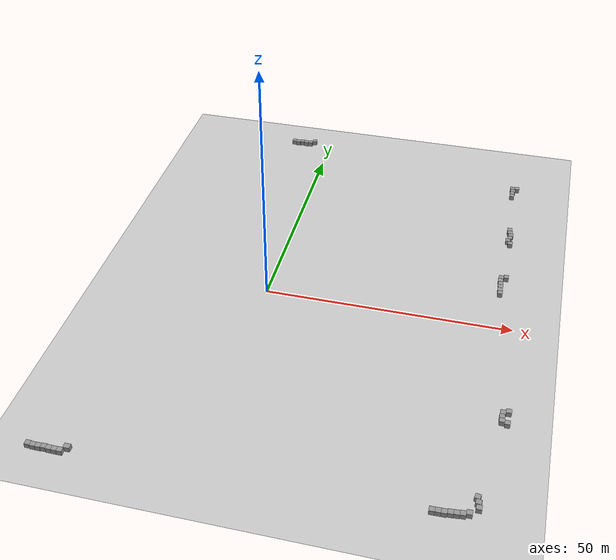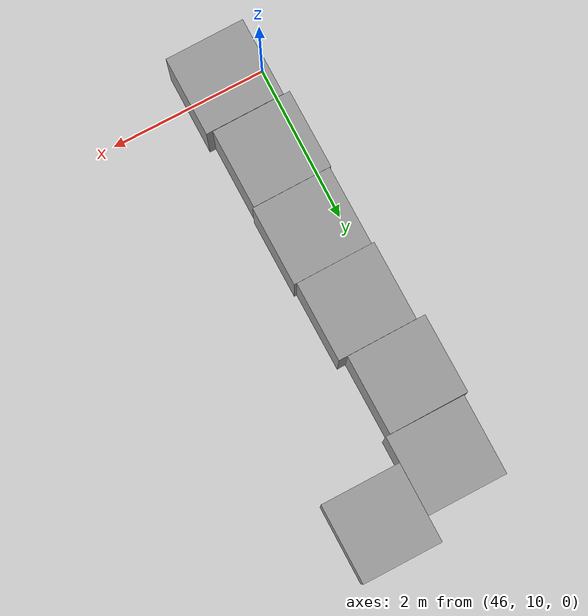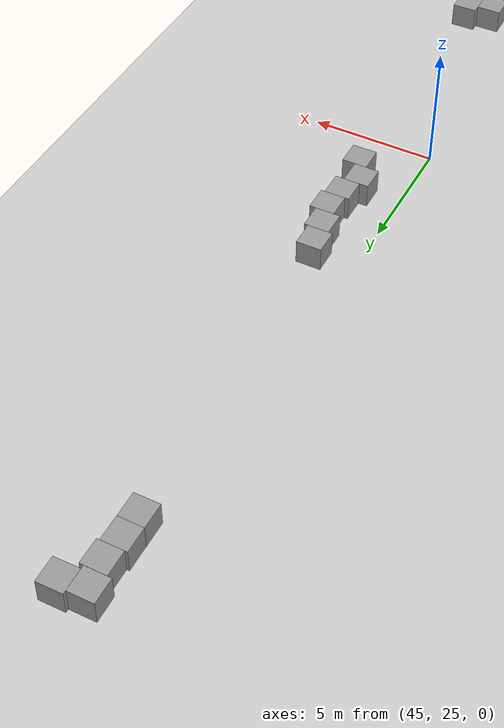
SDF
<sdf version="1.7">
 <world name="default">
  <plugin name="gazebo_occupancy_map" filename="libgazebo_2Dmap_plugin.so">
   <map_resolution>0.2</map_resolution>
   <map_height>1.25</map_height>
   <map_size_x>128</map_size_x>
   <map_size_y>128</map_size_y>
   <init_robot_x>-36.5</init_robot_x>
   <init_robot_y>36.5</init_robot_y>
  </plugin>
  <light name="sun" type="directional">
   <pose>0 0 10 0 -0 0</pose>
   <diffuse>0.8 0.8 0.8 1</diffuse>
   <specular>0.2 0.2 0.2 1</specular>
   <attenuation>
    <range>1000</range>
    <constant>0.9</constant>
    <linear>0.01</linear>
    <quadratic>0.001</quadratic>
   </attenuation>
   <direction>-0.5 0.1 -0.9</direction>
   <spot><inner_angle>0</inner_angle><outer_angle>0</outer_angle><falloff>0</falloff></spot>
  </light>
  <gravity>0 0 -9.8</gravity>
  <magnetic_field>6e-06 2.3e-05 -4.2e-05</magnetic_field>
  <atmosphere type="adiabatic"/>
  <physics type="ode">
   <max_step_size>0.001</max_step_size>
   <real_time_factor>1</real_time_factor>
   <real_time_update_rate>1000</real_time_update_rate>
  </physics>
  <scene><ambient>0.4 0.4 0.4 1</ambient><background>0.7 0.7 0.7 1</background><shadows>1</shadows></scene>
  <spherical_coordinates>
   <surface_model>EARTH_WGS84</surface_model>
   <latitude_deg>0</latitude_deg>
   <longitude_deg>0</longitude_deg>
   <elevation>0</elevation>
   <heading_deg>0</heading_deg>
  </spherical_coordinates>
  <model name="ground_plane">
   <static>1</static>
   <link name="link">
    <collision name="collision">
     <geometry><plane><normal>0 0 1</normal><size>100 100</size></plane></geometry>
     <surface>
      <contact><collide_bitmask>65535</collide_bitmask></contact>
      <friction><ode><mu>100</mu><mu2>50</mu2></ode></friction>
     </surface>
    </collision>
    <visual name="visual">
     <cast_shadows>0</cast_shadows>
     <geometry><plane><normal>0 0 1</normal><size>100 100</size></plane></geometry>
     <material>
      <script><uri>file://media/materials/scripts/gazebo.material</uri><name>Gazebo/Grey</name></script>
     </material>
    </visual>
   </link>
  </model>
  <model name="unit_box">
   <pose>-8.98636 57.4762 0.499995 -1e-05 -0 0.011443</pose>
   <link name="link">
    <inertial>
     <mass>1</mass>
     <inertia>
      <ixx>0.166667</ixx>
      <ixy>0</ixy>
      <ixz>0</ixz>
      <iyy>0.166667</iyy>
      <iyz>0</iyz>
      <izz>0.166667</izz>
     </inertia>
    </inertial>
    <collision name="collision"><geometry><box><size>1 1 1</size></box></geometry></collision>
    <visual name="visual">
     <geometry><box><size>1 1 1</size></box></geometry>
     <material>
      <script><name>Gazebo/Grey</name><uri>file://media/materials/scripts/gazebo.material</uri></script>
     </material>
    </visual>
   </link>
  </model>
  <model name="unit_box_0">
   <pose>-7.98468 57.3449 0.499995 0 1e-05 0.011611</pose>
   <link name="link">
    <inertial>
     <mass>1</mass>
     <inertia>
      <ixx>0.166667</ixx>
      <ixy>0</ixy>
      <ixz>0</ixz>
      <iyy>0.166667</iyy>
      <iyz>0</iyz>
      <izz>0.166667</izz>
     </inertia>
    </inertial>
    <collision name="collision"><geometry><box><size>1 1 1</size></box></geometry></collision>
    <visual name="visual">
     <geometry><box><size>1 1 1</size></box></geometry>
     <material>
      <script><name>Gazebo/Grey</name><uri>file://media/materials/scripts/gazebo.material</uri></script>
     </material>
    </visual>
   </link>
  </model>
  <model name="unit_box_1">
   <pose>-6.98557 57.5348 0.499995 -1e-05 -0 0.015401</pose>
   <link name="link">
    <inertial>
     <mass>1</mass>
     <inertia>
      <ixx>0.166667</ixx>
      <ixy>0</ixy>
      <ixz>0</ixz>
      <iyy>0.166667</iyy>
      <iyz>0</iyz>
      <izz>0.166667</izz>
     </inertia>
    </inertial>
    <collision name="collision"><geometry><box><size>1 1 1</size></box></geometry></collision>
    <visual name="visual">
     <geometry><box><size>1 1 1</size></box></geometry>
     <material>
      <script><name>Gazebo/Grey</name><uri>file://media/materials/scripts/gazebo.material</uri></script>
     </material>
    </visual>
   </link>
  </model>
  <model name="unit_box_2">
   <pose>-5.97813 57.4252 0.499995 -1e-05 -0 0.026365</pose>
   <link name="link">
    <inertial>
     <mass>1</mass>
     <inertia>
      <ixx>0.166667</ixx>
      <ixy>0</ixy>
      <ixz>0</ixz>
      <iyy>0.166667</iyy>
      <iyz>0</iyz>
      <izz>0.166667</izz>
     </inertia>
    </inertial>
    <collision name="collision"><geometry><box><size>1 1 1</size></box></geometry></collision>
    <visual name="visual">
     <geometry><box><size>1 1 1</size></box></geometry>
     <material>
      <script><name>Gazebo/Grey</name><uri>file://media/materials/scripts/gazebo.material</uri></script>
     </material>
    </visual>
   </link>
  </model>
  <model name="unit_box_3">
   <pose>-4.96443 57.5025 0.499995 0 -1e-05 0.056159</pose>
   <link name="link">
    <inertial>
     <mass>1</mass>
     <inertia>
      <ixx>0.166667</ixx>
      <ixy>0</ixy>
      <ixz>0</ixz>
      <iyy>0.166667</iyy>
      <iyz>0</iyz>
      <izz>0.166667</izz>
     </inertia>
    </inertial>
    <collision name="collision"><geometry><box><size>1 1 1</size></box></geometry></collision>
    <visual name="visual">
     <geometry><box><size>1 1 1</size></box></geometry>
     <material>
      <script><name>Gazebo/Grey</name><uri>file://media/materials/scripts/gazebo.material</uri></script>
     </material>
    </visual>
   </link>
  </model>
  <model name="unit_box_4">
   <pose>-4.01279 58.2979 0.5 0 -0 0.078397</pose>
   <link name="link">
    <inertial>
     <mass>1</mass>
     <inertia>
      <ixx>0.166667</ixx>
      <ixy>0</ixy>
      <ixz>0</ixz>
      <iyy>0.166667</iyy>
      <iyz>0</iyz>
      <izz>0.166667</izz>
     </inertia>
    </inertial>
    <collision name="collision"><geometry><box><size>1 1 1</size></box></geometry></collision>
    <visual name="visual">
     <geometry><box><size>1 1 1</size></box></geometry>
     <material>
      <script><name>Gazebo/Grey</name><uri>file://media/materials/scripts/gazebo.material</uri></script>
     </material>
    </visual>
   </link>
  </model>
  <model name="unit_box_5">
   <pose>-22.6082 -49.6496 0.499995 1e-05 0 0.007625</pose>
   <link name="link">
    <inertial>
     <mass>1</mass>
     <inertia>
      <ixx>0.166667</ixx>
      <ixy>0</ixy>
      <ixz>0</ixz>
      <iyy>0.166667</iyy>
      <iyz>0</iyz>
      <izz>0.166667</izz>
     </inertia>
    </inertial>
    <collision name="collision"><geometry><box><size>1 1 1</size></box></geometry></collision>
    <visual name="visual">
     <geometry><box><size>1 1 1</size></box></geometry>
     <material>
      <script><name>Gazebo/Grey</name><uri>file://media/materials/scripts/gazebo.material</uri></script>
     </material>
    </visual>
   </link>
  </model>
  <model name="unit_box_6">
   <pose>-23.6083 -49.648 0.499995 -0 -1e-05 0.007673</pose>
   <link name="link">
    <inertial>
     <mass>1</mass>
     <inertia>
      <ixx>0.166667</ixx>
      <ixy>0</ixy>
      <ixz>0</ixz>
      <iyy>0.166667</iyy>
      <iyz>0</iyz>
      <izz>0.166667</izz>
     </inertia>
    </inertial>
    <collision name="collision"><geometry><box><size>1 1 1</size></box></geometry></collision>
    <visual name="visual">
     <geometry><box><size>1 1 1</size></box></geometry>
     <material>
      <script><name>Gazebo/Grey</name><uri>file://media/materials/scripts/gazebo.material</uri></script>
     </material>
    </visual>
   </link>
  </model>
  <model name="unit_box_7">
   <pose>-25.6091 -49.5506 0.5 0 -0 0.007649</pose>
   <link name="link">
    <inertial>
     <mass>1</mass>
     <inertia>
      <ixx>0.166667</ixx>
      <ixy>0</ixy>
      <ixz>0</ixz>
      <iyy>0.166667</iyy>
      <iyz>0</iyz>
      <izz>0.166667</izz>
     </inertia>
    </inertial>
    <collision name="collision"><geometry><box><size>1 1 1</size></box></geometry></collision>
    <visual name="visual">
     <geometry><box><size>1 1 1</size></box></geometry>
     <material>
      <script><name>Gazebo/Grey</name><uri>file://media/materials/scripts/gazebo.material</uri></script>
     </material>
    </visual>
   </link>
  </model>
  <model name="unit_box_8">
   <pose>-24.6084 -49.6379 0.5 -1.5708 0 0.00768</pose>
   <link name="link">
    <inertial>
     <mass>1</mass>
     <inertia>
      <ixx>0.166667</ixx>
      <ixy>0</ixy>
      <ixz>0</ixz>
      <iyy>0.166667</iyy>
      <iyz>0</iyz>
      <izz>0.166667</izz>
     </inertia>
    </inertial>
    <collision name="collision"><geometry><box><size>1 1 1</size></box></geometry></collision>
    <visual name="visual">
     <geometry><box><size>1 1 1</size></box></geometry>
     <material>
      <script><name>Gazebo/Grey</name><uri>file://media/materials/scripts/gazebo.material</uri></script>
     </material>
    </visual>
   </link>
  </model>
  <model name="unit_box_9">
   <pose>-26.6087 -49.6139 0.5 0 -0 0.007648</pose>
   <link name="link">
    <inertial>
     <mass>1</mass>
     <inertia>
      <ixx>0.166667</ixx>
      <ixy>0</ixy>
      <ixz>0</ixz>
      <iyy>0.166667</iyy>
      <iyz>0</iyz>
      <izz>0.166667</izz>
     </inertia>
    </inertial>
    <collision name="collision"><geometry><box><size>1 1 1</size></box></geometry></collision>
    <visual name="visual">
     <geometry><box><size>1 1 1</size></box></geometry>
     <material>
      <script><name>Gazebo/Grey</name><uri>file://media/materials/scripts/gazebo.material</uri></script>
     </material>
    </visual>
   </link>
  </model>
  <model name="unit_box_10">
   <pose>-27.6089 -49.6077 0.499995 1e-05 -0 0.007649</pose>
   <link name="link">
    <inertial>
     <mass>1</mass>
     <inertia>
      <ixx>0.166667</ixx>
      <ixy>0</ixy>
      <ixz>0</ixz>
      <iyy>0.166667</iyy>
      <iyz>0</iyz>
      <izz>0.166667</izz>
     </inertia>
    </inertial>
    <collision name="collision"><geometry><box><size>1 1 1</size></box></geometry></collision>
    <visual name="visual">
     <geometry><box><size>1 1 1</size></box></geometry>
     <material>
      <script><name>Gazebo/Grey</name><uri>file://media/materials/scripts/gazebo.material</uri></script>
     </material>
    </visual>
   </link>
  </model>
  <model name="unit_box_13">
   <pose>46.5951 32.2481 0.499995 0 -1e-05 0.010753</pose>
   <link name="link">
    <inertial>
     <mass>1</mass>
     <inertia>
      <ixx>0.166667</ixx>
      <ixy>0</ixy>
      <ixz>0</ixz>
      <iyy>0.166667</iyy>
      <iyz>0</iyz>
      <izz>0.166667</izz>
     </inertia>
    </inertial>
    <collision name="collision"><geometry><box><size>1 1 1</size></box></geometry></collision>
    <visual name="visual">
     <geometry><box><size>1 1 1</size></box></geometry>
     <material>
      <script><name>Gazebo/Grey</name><uri>file://media/materials/scripts/gazebo.material</uri></script>
     </material>
    </visual>
   </link>
  </model>
  <model name="unit_box_14">
   <pose>46.7648 31.2498 0.499995 -0 -1e-05 0.010744</pose>
   <link name="link">
    <inertial>
     <mass>1</mass>
     <inertia>
      <ixx>0.166667</ixx>
      <ixy>0</ixy>
      <ixz>0</ixz>
      <iyy>0.166667</iyy>
      <iyz>0</iyz>
      <izz>0.166667</izz>
     </inertia>
    </inertial>
    <collision name="collision"><geometry><box><size>1 1 1</size></box></geometry></collision>
    <visual name="visual">
     <geometry><box><size>1 1 1</size></box></geometry>
     <material>
      <script><name>Gazebo/Grey</name><uri>file://media/materials/scripts/gazebo.material</uri></script>
     </material>
    </visual>
   </link>
  </model>
  <model name="unit_box_15">
   <pose>47.0333 30.2523 0.499995 0 1e-05 0.010105</pose>
   <link name="link">
    <inertial>
     <mass>1</mass>
     <inertia>
      <ixx>0.166667</ixx>
      <ixy>0</ixy>
      <ixz>0</ixz>
      <iyy>0.166667</iyy>
      <iyz>0</iyz>
      <izz>0.166667</izz>
     </inertia>
    </inertial>
    <collision name="collision"><geometry><box><size>1 1 1</size></box></geometry></collision>
    <visual name="visual">
     <geometry><box><size>1 1 1</size></box></geometry>
     <material>
      <script><name>Gazebo/Grey</name><uri>file://media/materials/scripts/gazebo.material</uri></script>
     </material>
    </visual>
   </link>
  </model>
  <model name="unit_box_16">
   <pose>46.8896 29.2496 0.499995 0 1e-05 0.00669</pose>
   <link name="link">
    <inertial>
     <mass>1</mass>
     <inertia>
      <ixx>0.166667</ixx>
      <ixy>0</ixy>
      <ixz>0</ixz>
      <iyy>0.166667</iyy>
      <iyz>0</iyz>
      <izz>0.166667</izz>
     </inertia>
    </inertial>
    <collision name="collision"><geometry><box><size>1 1 1</size></box></geometry></collision>
    <visual name="visual">
     <geometry><box><size>1 1 1</size></box></geometry>
     <material>
      <script><name>Gazebo/Grey</name><uri>file://media/materials/scripts/gazebo.material</uri></script>
     </material>
    </visual>
   </link>
  </model>
  <model name="unit_box_17">
   <pose>46.5508 28.2473 0.499995 0 -1e-05 0.006689</pose>
   <link name="link">
    <inertial>
     <mass>1</mass>
     <inertia>
      <ixx>0.166667</ixx>
      <ixy>0</ixy>
      <ixz>0</ixz>
      <iyy>0.166667</iyy>
      <iyz>0</iyz>
      <izz>0.166667</izz>
     </inertia>
    </inertial>
    <collision name="collision"><geometry><box><size>1 1 1</size></box></geometry></collision>
    <visual name="visual">
     <geometry><box><size>1 1 1</size></box></geometry>
     <material>
      <script><name>Gazebo/Grey</name><uri>file://media/materials/scripts/gazebo.material</uri></script>
     </material>
    </visual>
   </link>
  </model>
  <model name="unit_box_18">
   <pose>47.0904 27.251 0.499995 -1e-05 -0 0.010691</pose>
   <link name="link">
    <inertial>
     <mass>1</mass>
     <inertia>
      <ixx>0.166667</ixx>
      <ixy>0</ixy>
      <ixz>0</ixz>
      <iyy>0.166667</iyy>
      <iyz>0</iyz>
      <izz>0.166667</izz>
     </inertia>
    </inertial>
    <collision name="collision"><geometry><box><size>1 1 1</size></box></geometry></collision>
    <visual name="visual">
     <geometry><box><size>1 1 1</size></box></geometry>
     <material>
      <script><name>Gazebo/Grey</name><uri>file://media/materials/scripts/gazebo.material</uri></script>
     </material>
    </visual>
   </link>
  </model>
  <model name="unit_box_19">
   <pose>45.943 45.7706 0.499995 0 -1e-05 0.006135</pose>
   <link name="link">
    <inertial>
     <mass>1</mass>
     <inertia>
      <ixx>0.166667</ixx>
      <ixy>0</ixy>
      <ixz>0</ixz>
      <iyy>0.166667</iyy>
      <iyz>0</iyz>
      <izz>0.166667</izz>
     </inertia>
    </inertial>
    <collision name="collision"><geometry><box><size>1 1 1</size></box></geometry></collision>
    <visual name="visual">
     <geometry><box><size>1 1 1</size></box></geometry>
     <material>
      <script><name>Gazebo/Grey</name><uri>file://media/materials/scripts/gazebo.material</uri></script>
     </material>
    </visual>
   </link>
  </model>
  <model name="unit_box_20">
   <pose>45.9403 46.7707 0.499995 -1e-05 -0 0.006289</pose>
   <link name="link">
    <inertial>
     <mass>1</mass>
     <inertia>
      <ixx>0.166667</ixx>
      <ixy>0</ixy>
      <ixz>0</ixz>
      <iyy>0.166667</iyy>
      <iyz>0</iyz>
      <izz>0.166667</izz>
     </inertia>
    </inertial>
    <collision name="collision"><geometry><box><size>1 1 1</size></box></geometry></collision>
    <visual name="visual">
     <geometry><box><size>1 1 1</size></box></geometry>
     <material>
      <script><name>Gazebo/Grey</name><uri>file://media/materials/scripts/gazebo.material</uri></script>
     </material>
    </visual>
   </link>
  </model>
  <model name="unit_box_21">
   <pose>46.0353 47.7715 0.499995 -1e-05 -0 0.006637</pose>
   <link name="link">
    <inertial>
     <mass>1</mass>
     <inertia>
      <ixx>0.166667</ixx>
      <ixy>0</ixy>
      <ixz>0</ixz>
      <iyy>0.166667</iyy>
      <iyz>0</iyz>
      <izz>0.166667</izz>
     </inertia>
    </inertial>
    <collision name="collision"><geometry><box><size>1 1 1</size></box></geometry></collision>
    <visual name="visual">
     <geometry><box><size>1 1 1</size></box></geometry>
     <material>
      <script><name>Gazebo/Grey</name><uri>file://media/materials/scripts/gazebo.material</uri></script>
     </material>
    </visual>
   </link>
  </model>
  <model name="unit_box_22">
   <pose>45.8528 48.7723 0.499995 -0 -1e-05 0.012651</pose>
   <link name="link">
    <inertial>
     <mass>1</mass>
     <inertia>
      <ixx>0.166667</ixx>
      <ixy>0</ixy>
      <ixz>0</ixz>
      <iyy>0.166667</iyy>
      <iyz>0</iyz>
      <izz>0.166667</izz>
     </inertia>
    </inertial>
    <collision name="collision"><geometry><box><size>1 1 1</size></box></geometry></collision>
    <visual name="visual">
     <geometry><box><size>1 1 1</size></box></geometry>
     <material>
      <script><name>Gazebo/Grey</name><uri>file://media/materials/scripts/gazebo.material</uri></script>
     </material>
    </visual>
   </link>
  </model>
  <model name="unit_box_23">
   <pose>46.8538 48.9207 0.499995 0 -1e-05 0.02025</pose>
   <link name="link">
    <inertial>
     <mass>1</mass>
     <inertia>
      <ixx>0.166667</ixx>
      <ixy>0</ixy>
      <ixz>0</ixz>
      <iyy>0.166667</iyy>
      <iyz>0</iyz>
      <izz>0.166667</izz>
     </inertia>
    </inertial>
    <collision name="collision"><geometry><box><size>1 1 1</size></box></geometry></collision>
    <visual name="visual">
     <geometry><box><size>1 1 1</size></box></geometry>
     <material>
      <script><name>Gazebo/Grey</name><uri>file://media/materials/scripts/gazebo.material</uri></script>
     </material>
    </visual>
   </link>
  </model>
  <model name="unit_box_24">
   <pose>46.511 10.0828 0.499995 0 1e-05 0.010053</pose>
   <link name="link">
    <inertial>
     <mass>1</mass>
     <inertia>
      <ixx>0.166667</ixx>
      <ixy>0</ixy>
      <ixz>0</ixz>
      <iyy>0.166667</iyy>
      <iyz>0</iyz>
      <izz>0.166667</izz>
     </inertia>
    </inertial>
    <collision name="collision"><geometry><box><size>1 1 1</size></box></geometry></collision>
    <visual name="visual">
     <geometry><box><size>1 1 1</size></box></geometry>
     <material>
      <script><name>Gazebo/Grey</name><uri>file://media/materials/scripts/gazebo.material</uri></script>
     </material>
    </visual>
   </link>
  </model>
  <model name="unit_box_25">
   <pose>46.421 11.0857 0.499995 -0 -1e-05 0.011551</pose>
   <link name="link">
    <inertial>
     <mass>1</mass>
     <inertia>
      <ixx>0.166667</ixx>
      <ixy>0</ixy>
      <ixz>0</ixz>
      <iyy>0.166667</iyy>
      <iyz>0</iyz>
      <izz>0.166667</izz>
     </inertia>
    </inertial>
    <collision name="collision"><geometry><box><size>1 1 1</size></box></geometry></collision>
    <visual name="visual">
     <geometry><box><size>1 1 1</size></box></geometry>
     <material>
      <script><name>Gazebo/Grey</name><uri>file://media/materials/scripts/gazebo.material</uri></script>
     </material>
    </visual>
   </link>
  </model>
  <model name="unit_box_26">
   <pose>46.427 12.0874 0.499995 1e-05 0 0.012653</pose>
   <link name="link">
    <inertial>
     <mass>1</mass>
     <inertia>
      <ixx>0.166667</ixx>
      <ixy>0</ixy>
      <ixz>0</ixz>
      <iyy>0.166667</iyy>
      <iyz>0</iyz>
      <izz>0.166667</izz>
     </inertia>
    </inertial>
    <collision name="collision"><geometry><box><size>1 1 1</size></box></geometry></collision>
    <visual name="visual">
     <geometry><box><size>1 1 1</size></box></geometry>
     <material>
      <script><name>Gazebo/Grey</name><uri>file://media/materials/scripts/gazebo.material</uri></script>
     </material>
    </visual>
   </link>
  </model>
  <model name="unit_box_27">
   <pose>46.3811 13.0875 0.499995 -0 1e-05 0.013697</pose>
   <link name="link">
    <inertial>
     <mass>1</mass>
     <inertia>
      <ixx>0.166667</ixx>
      <ixy>0</ixy>
      <ixz>0</ixz>
      <iyy>0.166667</iyy>
      <iyz>0</iyz>
      <izz>0.166667</izz>
     </inertia>
    </inertial>
    <collision name="collision"><geometry><box><size>1 1 1</size></box></geometry></collision>
    <visual name="visual">
     <geometry><box><size>1 1 1</size></box></geometry>
     <material>
      <script><name>Gazebo/Grey</name><uri>file://media/materials/scripts/gazebo.material</uri></script>
     </material>
    </visual>
   </link>
  </model>
  <model name="unit_box_28">
   <pose>46.2579 14.0872 0.499995 -1e-05 -0 0.014336</pose>
   <link name="link">
    <inertial>
     <mass>1</mass>
     <inertia>
      <ixx>0.166667</ixx>
      <ixy>0</ixy>
      <ixz>0</ixz>
      <iyy>0.166667</iyy>
      <iyz>0</iyz>
      <izz>0.166667</izz>
     </inertia>
    </inertial>
    <collision name="collision"><geometry><box><size>1 1 1</size></box></geometry></collision>
    <visual name="visual">
     <geometry><box><size>1 1 1</size></box></geometry>
     <material>
      <script><name>Gazebo/Grey</name><uri>file://media/materials/scripts/gazebo.material</uri></script>
     </material>
    </visual>
   </link>
  </model>
  <model name="unit_box_29">
   <pose>46.3018 15.0921 0.499995 -1e-05 -0 0.00751</pose>
   <link name="link">
    <inertial>
     <mass>1</mass>
     <inertia>
      <ixx>0.166667</ixx>
      <ixy>0</ixy>
      <ixz>0</ixz>
      <iyy>0.166667</iyy>
      <iyz>0</iyz>
      <izz>0.166667</izz>
     </inertia>
    </inertial>
    <collision name="collision"><geometry><box><size>1 1 1</size></box></geometry></collision>
    <visual name="visual">
     <geometry><box><size>1 1 1</size></box></geometry>
     <material>
      <script><name>Gazebo/Grey</name><uri>file://media/materials/scripts/gazebo.material</uri></script>
     </material>
    </visual>
   </link>
  </model>
  <model name="unit_box_30">
   <pose>47.2994 15.4273 0.499995 -1e-05 -0 0.007507</pose>
   <link name="link">
    <inertial>
     <mass>1</mass>
     <inertia>
      <ixx>0.166667</ixx>
      <ixy>0</ixy>
      <ixz>0</ixz>
      <iyy>0.166667</iyy>
      <iyz>0</iyz>
      <izz>0.166667</izz>
     </inertia>
    </inertial>
    <collision name="collision"><geometry><box><size>1 1 1</size></box></geometry></collision>
    <visual name="visual">
     <geometry><box><size>1 1 1</size></box></geometry>
     <material>
      <script><name>Gazebo/Grey</name><uri>file://media/materials/scripts/gazebo.material</uri></script>
     </material>
    </visual>
   </link>
  </model>
  <model name="unit_box_31">
   <pose>46.8394 -45.9795 0.499995 0 1e-05 0.032244</pose>
   <link name="link">
    <inertial>
     <mass>1</mass>
     <inertia>
      <ixx>0.166667</ixx>
      <ixy>0</ixy>
      <ixz>0</ixz>
      <iyy>0.166667</iyy>
      <iyz>0</iyz>
      <izz>0.166667</izz>
     </inertia>
    </inertial>
    <collision name="collision"><geometry><box><size>1 1 1</size></box></geometry></collision>
    <visual name="visual">
     <geometry><box><size>1 1 1</size></box></geometry>
     <material>
      <script><name>Gazebo/Grey</name><uri>file://media/materials/scripts/gazebo.material</uri></script>
     </material>
    </visual>
   </link>
  </model>
  <model name="unit_box_32">
   <pose>45.851 -46.3579 0.499995 0 -1e-05 0.032297</pose>
   <link name="link">
    <inertial>
     <mass>1</mass>
     <inertia>
      <ixx>0.166667</ixx>
      <ixy>0</ixy>
      <ixz>0</ixz>
      <iyy>0.166667</iyy>
      <iyz>0</iyz>
      <izz>0.166667</izz>
     </inertia>
    </inertial>
    <collision name="collision"><geometry><box><size>1 1 1</size></box></geometry></collision>
    <visual name="visual">
     <geometry><box><size>1 1 1</size></box></geometry>
     <material>
      <script><name>Gazebo/Grey</name><uri>file://media/materials/scripts/gazebo.material</uri></script>
     </material>
    </visual>
   </link>
  </model>
  <model name="unit_box_33">
   <pose>44.8539 -46.4684 0.499995 0 1e-05 0.032145</pose>
   <link name="link">
    <inertial>
     <mass>1</mass>
     <inertia>
      <ixx>0.166667</ixx>
      <ixy>0</ixy>
      <ixz>0</ixz>
      <iyy>0.166667</iyy>
      <iyz>0</iyz>
      <izz>0.166667</izz>
     </inertia>
    </inertial>
    <collision name="collision"><geometry><box><size>1 1 1</size></box></geometry></collision>
    <visual name="visual">
     <geometry><box><size>1 1 1</size></box></geometry>
     <material>
      <script><name>Gazebo/Grey</name><uri>file://media/materials/scripts/gazebo.material</uri></script>
     </material>
    </visual>
   </link>
  </model>
  <model name="unit_box_34">
   <pose>43.8563 -46.5607 0.499995 -1e-05 -0 0.032085</pose>
   <link name="link">
    <inertial>
     <mass>1</mass>
     <inertia>
      <ixx>0.166667</ixx>
      <ixy>0</ixy>
      <ixz>0</ixz>
      <iyy>0.166667</iyy>
      <iyz>0</iyz>
      <izz>0.166667</izz>
     </inertia>
    </inertial>
    <collision name="collision"><geometry><box><size>1 1 1</size></box></geometry></collision>
    <visual name="visual">
     <geometry><box><size>1 1 1</size></box></geometry>
     <material>
      <script><name>Gazebo/Grey</name><uri>file://media/materials/scripts/gazebo.material</uri></script>
     </material>
    </visual>
   </link>
  </model>
  <model name="unit_box_35">
   <pose>42.8599 -46.7184 0.499995 -0 -1e-05 0.03034</pose>
   <link name="link">
    <inertial>
     <mass>1</mass>
     <inertia>
      <ixx>0.166667</ixx>
      <ixy>0</ixy>
      <ixz>0</ixz>
      <iyy>0.166667</iyy>
      <iyz>0</iyz>
      <izz>0.166667</izz>
     </inertia>
    </inertial>
    <collision name="collision"><geometry><box><size>1 1 1</size></box></geometry></collision>
    <visual name="visual">
     <geometry><box><size>1 1 1</size></box></geometry>
     <material>
      <script><name>Gazebo/Grey</name><uri>file://media/materials/scripts/gazebo.material</uri></script>
     </material>
    </visual>
   </link>
  </model>
  <model name="unit_box_36">
   <pose>41.8595 -46.7334 0.499995 0 -1e-05 0.029624</pose>
   <link name="link">
    <inertial>
     <mass>1</mass>
     <inertia>
      <ixx>0.166667</ixx>
      <ixy>0</ixy>
      <ixz>0</ixz>
      <iyy>0.166667</iyy>
      <iyz>0</iyz>
      <izz>0.166667</izz>
     </inertia>
    </inertial>
    <collision name="collision"><geometry><box><size>1 1 1</size></box></geometry></collision>
    <visual name="visual">
     <geometry><box><size>1 1 1</size></box></geometry>
     <material>
      <script><name>Gazebo/Grey</name><uri>file://media/materials/scripts/gazebo.material</uri></script>
     </material>
    </visual>
   </link>
  </model>
  <model name="unit_box_37">
   <pose>40.8598 -46.7595 0.499995 1e-05 -0 0.029637</pose>
   <link name="link">
    <inertial>
     <mass>1</mass>
     <inertia>
      <ixx>0.166667</ixx>
      <ixy>0</ixy>
      <ixz>0</ixz>
      <iyy>0.166667</iyy>
      <iyz>0</iyz>
      <izz>0.166667</izz>
     </inertia>
    </inertial>
    <collision name="collision"><geometry><box><size>1 1 1</size></box></geometry></collision>
    <visual name="visual">
     <geometry><box><size>1 1 1</size></box></geometry>
     <material>
      <script><name>Gazebo/Grey</name><uri>file://media/materials/scripts/gazebo.material</uri></script>
     </material>
    </visual>
   </link>
  </model>
  <model name="unit_box_38">
   <pose>50.0794 -22.8502 0.499995 0 -1e-05 0.015118</pose>
   <link name="link">
    <inertial>
     <mass>1</mass>
     <inertia>
      <ixx>0.166667</ixx>
      <ixy>0</ixy>
      <ixz>0</ixz>
      <iyy>0.166667</iyy>
      <iyz>0</iyz>
      <izz>0.166667</izz>
     </inertia>
    </inertial>
    <collision name="collision"><geometry><box><size>1 1 1</size></box></geometry></collision>
    <visual name="visual">
     <geometry><box><size>1 1 1</size></box></geometry>
     <material>
      <script><name>Gazebo/Grey</name><uri>file://media/materials/scripts/gazebo.material</uri></script>
     </material>
    </visual>
   </link>
  </model>
  <model name="unit_box_39">
   <pose>50.0202 -23.8526 0.499995 -0 -1e-05 0.011906</pose>
   <link name="link">
    <inertial>
     <mass>1</mass>
     <inertia>
      <ixx>0.166667</ixx>
      <ixy>0</ixy>
      <ixz>0</ixz>
      <iyy>0.166667</iyy>
      <iyz>0</iyz>
      <izz>0.166667</izz>
     </inertia>
    </inertial>
    <collision name="collision"><geometry><box><size>1 1 1</size></box></geometry></collision>
    <visual name="visual">
     <geometry><box><size>1 1 1</size></box></geometry>
     <material>
      <script><name>Gazebo/Grey</name><uri>file://media/materials/scripts/gazebo.material</uri></script>
     </material>
    </visual>
   </link>
  </model>
  <model name="unit_box_40">
   <pose>50.067 -24.855 0.5 0 -0 0.006133</pose>
   <link name="link">
    <inertial>
     <mass>1</mass>
     <inertia>
      <ixx>0.166667</ixx>
      <ixy>0</ixy>
      <ixz>0</ixz>
      <iyy>0.166667</iyy>
      <iyz>0</iyz>
      <izz>0.166667</izz>
     </inertia>
    </inertial>
    <collision name="collision"><geometry><box><size>1 1 1</size></box></geometry></collision>
    <visual name="visual">
     <geometry><box><size>1 1 1</size></box></geometry>
     <material>
      <script><name>Gazebo/Grey</name><uri>file://media/materials/scripts/gazebo.material</uri></script>
     </material>
    </visual>
   </link>
  </model>
  <model name="unit_box_41">
   <pose>51.0754 -22.4068 0.499995 0 -1e-05 0.047956</pose>
   <link name="link">
    <inertial>
     <mass>1</mass>
     <inertia>
      <ixx>0.166667</ixx>
      <ixy>0</ixy>
      <ixz>0</ixz>
      <iyy>0.166667</iyy>
      <iyz>0</iyz>
      <izz>0.166667</izz>
     </inertia>
    </inertial>
    <collision name="collision"><geometry><box><size>1 1 1</size></box></geometry></collision>
    <visual name="visual">
     <geometry><box><size>1 1 1</size></box></geometry>
     <material>
      <script><name>Gazebo/Grey</name><uri>file://media/materials/scripts/gazebo.material</uri></script>
     </material>
    </visual>
   </link>
  </model>
  <model name="unit_box_42">
   <pose>51.0702 -25.2102 0.499995 0 -1e-05 -0.000796</pose>
   <link name="link">
    <inertial>
     <mass>1</mass>
     <inertia>
      <ixx>0.166667</ixx>
      <ixy>0</ixy>
      <ixz>0</ixz>
      <iyy>0.166667</iyy>
      <iyz>0</iyz>
      <izz>0.166667</izz>
     </inertia>
    </inertial>
    <collision name="collision"><geometry><box><size>1 1 1</size></box></geometry></collision>
    <visual name="visual">
     <geometry><box><size>1 1 1</size></box></geometry>
     <material>
      <script><name>Gazebo/Grey</name><uri>file://media/materials/scripts/gazebo.material</uri></script>
     </material>
    </visual>
   </link>
  </model>
  <model name="unit_box_43">
   <pose>47.7627 -42.4985 0.499995 -1e-05 -0 -0.180024</pose>
   <link name="link">
    <inertial>
     <mass>1</mass>
     <inertia>
      <ixx>0.166667</ixx>
      <ixy>0</ixy>
      <ixz>0</ixz>
      <iyy>0.166667</iyy>
      <iyz>0</iyz>
      <izz>0.166667</izz>
     </inertia>
    </inertial>
    <collision name="collision"><geometry><box><size>1 1 1</size></box></geometry></collision>
    <visual name="visual">
     <geometry><box><size>1 1 1</size></box></geometry>
     <material>
      <script><name>Gazebo/Grey</name><uri>file://media/materials/scripts/gazebo.material</uri></script>
     </material>
    </visual>
   </link>
  </model>
  <model name="unit_box_44">
   <pose>48.0361 -43.5669 0.5 0 0 -0.137791</pose>
   <link name="link">
    <inertial>
     <mass>1</mass>
     <inertia>
      <ixx>0.166667</ixx>
      <ixy>0</ixy>
      <ixz>0</ixz>
      <iyy>0.166667</iyy>
      <iyz>0</iyz>
      <izz>0.166667</izz>
     </inertia>
    </inertial>
    <collision name="collision"><geometry><box><size>1 1 1</size></box></geometry></collision>
    <visual name="visual">
     <geometry><box><size>1 1 1</size></box></geometry>
     <material>
      <script><name>Gazebo/Grey</name><uri>file://media/materials/scripts/gazebo.material</uri></script>
     </material>
    </visual>
   </link>
  </model>
  <model name="unit_box_45">
   <pose>48.2132 -44.6302 0.499995 1e-05 0 -0.002713</pose>
   <link name="link">
    <inertial>
     <mass>1</mass>
     <inertia>
      <ixx>0.166667</ixx>
      <ixy>0</ixy>
      <ixz>0</ixz>
      <iyy>0.166667</iyy>
      <iyz>0</iyz>
      <izz>0.166667</izz>
     </inertia>
    </inertial>
    <collision name="collision"><geometry><box><size>1 1 1</size></box></geometry></collision>
    <visual name="visual">
     <geometry><box><size>1 1 1</size></box></geometry>
     <material>
      <script><name>Gazebo/Grey</name><uri>file://media/materials/scripts/gazebo.material</uri></script>
     </material>
    </visual>
   </link>
  </model>
  <model name="unit_box_11">
   <pose>-28.6098 -49.508 0.5 0 -0 0.007427</pose>
   <link name="link">
    <inertial>
     <mass>1</mass>
     <inertia>
      <ixx>0.166667</ixx>
      <ixy>0</ixy>
      <ixz>0</ixz>
      <iyy>0.166667</iyy>
      <iyz>0</iyz>
      <izz>0.166667</izz>
     </inertia>
    </inertial>
    <collision name="collision"><geometry><box><size>1 1 1</size></box></geometry></collision>
    <visual name="visual">
     <geometry><box><size>1 1 1</size></box></geometry>
     <material>
      <script><name>Gazebo/Grey</name><uri>file://media/materials/scripts/gazebo.material</uri></script>
     </material>
    </visual>
   </link>
  </model>
  <model name="unit_box_12">
   <pose>-21.7165 -48.6475 0.499951 0 0 -0.004242</pose>
   <link name="link">
    <inertial>
     <mass>1</mass>
     <inertia>
      <ixx>0.166667</ixx>
      <ixy>0</ixy>
      <ixz>0</ixz>
      <iyy>0.166667</iyy>
      <iyz>0</iyz>
      <izz>0.166667</izz>
     </inertia>
    </inertial>
    <collision name="collision"><geometry><box><size>1.21141 1 1</size></box></geometry></collision>
    <visual name="visual">
     <geometry><box><size>1.21141 1 1</size></box></geometry>
     <material>
      <script><name>Gazebo/Grey</name><uri>file://media/materials/scripts/gazebo.material</uri></script>
     </material>
    </visual>
   </link>
  </model>
 </world>
</sdf>
